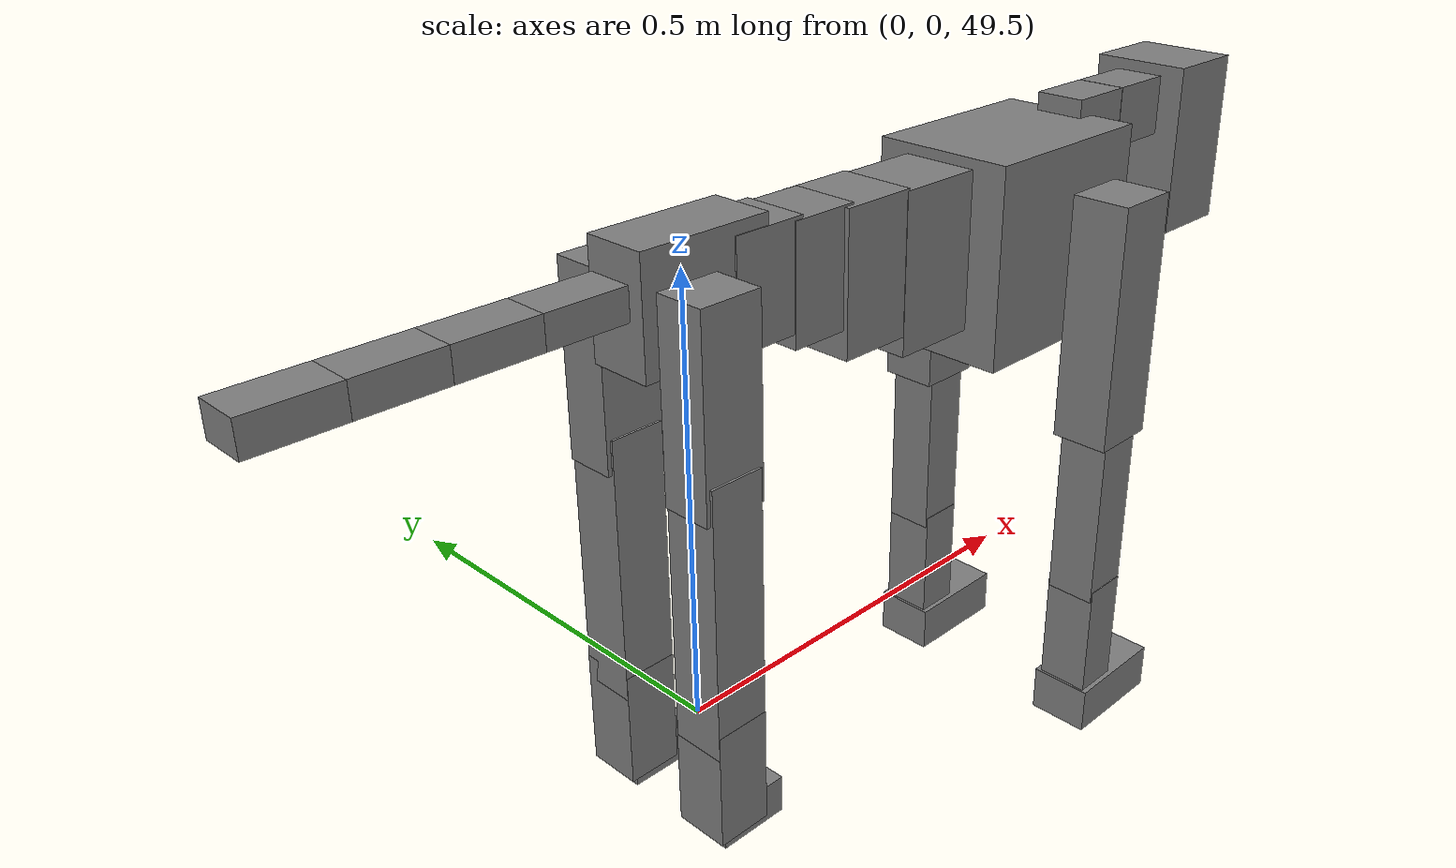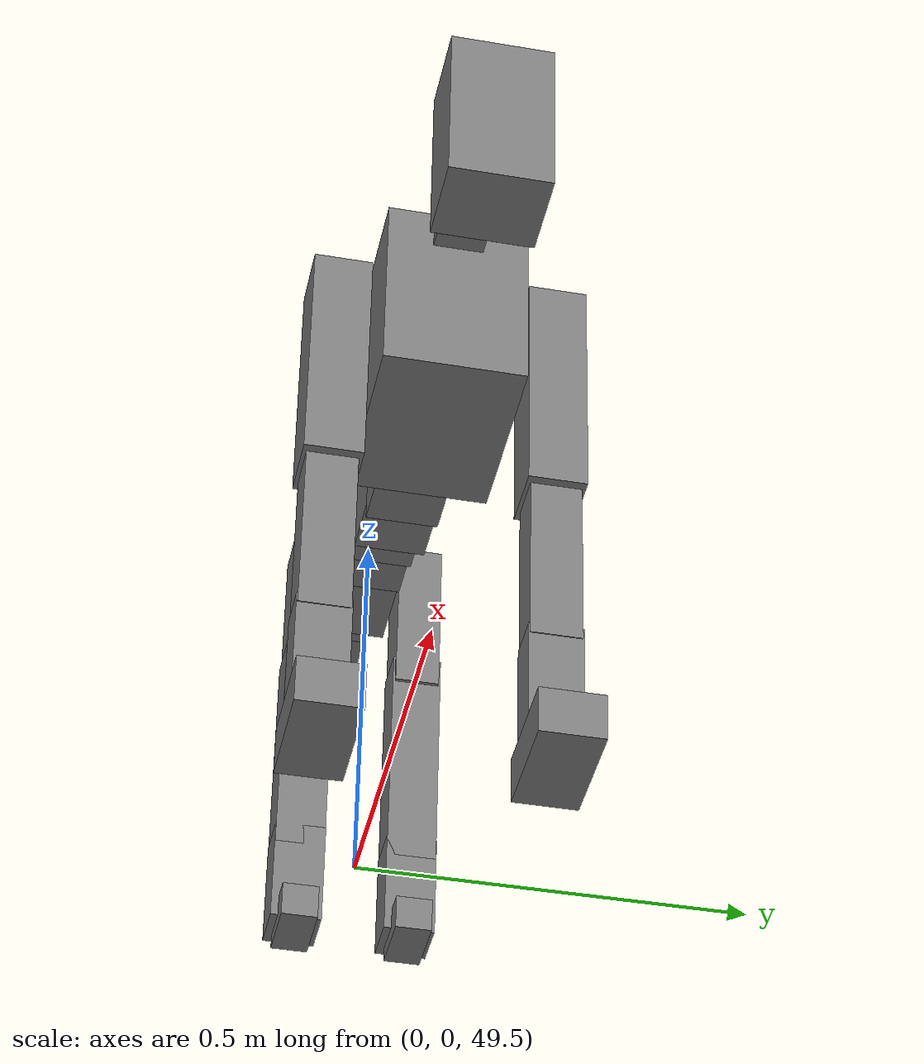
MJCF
<mujoco model="dog">

    <default>
        <joint armature="0.02" stiffness="1" damping="0.2" limited="true"/>
        <geom condim="3" friction="1 0.05 0.05" margin="0.01"/>
        <motor ctrllimited="true" ctrlrange="-1.0 1.0" forcelimited="true" gear="50"/>
    </default>

    <compiler inertiafromgeom="true" angle="radian"/>

    <option timestep="0.016" iterations="50" tolerance="1e-10" solver="Newton" jacobian="dense" cone="pyramidal"/>

    <size nconmax="20000" njmax="60000" nstack="5000000"/>
    <visual>
        <map force="0.1" zfar="30"/>
        <rgba haze="0.15 0.25 0.35 1"/>
        <quality shadowsize="2048"/>
        <global offwidth="800" offheight="800"/>
    </visual>

    <asset>
        <texture type="skybox" builtin="gradient" rgb1="0.3 0.5 0.7" rgb2="0 0 0" width="512" height="512"/>
        <texture name="texplane" type="2d" builtin="checker" rgb1=".2 .3 .4" rgb2=".1 0.15 0.2" width="512" height="512"
                 mark="cross" markrgb=".8 .8 .8"/>
        <texture name="texgeom" type="cube" builtin="flat" mark="cross" width="127" height="1278" rgb1="0.8 0.6 0.4"
                 rgb2="0.8 0.6 0.4" markrgb="1 1 1" random="0.01"/>

        <material name="matplane" reflectance="0.3" texture="texplane" texrepeat="1 1" texuniform="true"/>
        <material name="matgeom" texture="texgeom" texuniform="true" rgba="0.8 0.6 .4 1"/>
    </asset>

    <worldbody>
        <geom name="floor" pos="0 0 0" size="0 0 .25" type="plane" material="matplane" condim="3"/>

        <light directional="false" diffuse=".2 .2 .2" specular="0 0 0" pos="0 0 5" dir="0 0 -1" castshadow="false"/>
        <light mode="targetbodycom" target="torso" directional="false" diffuse=".8 .8 .8" specular="0.3 0.3 0.3"
               pos="0 0 4.0" dir="0 0 -1"/>

        <body name="root" pos="0 0 50">
            <freejoint name="root_1"/>
            <geom type="box" pos="0 0 -0.02" size="0.0774  0.0358  0.063" density="2030"/>

            <body name="spine1" pos="0.054 0 0">
                <joint name="spine1_y" axis="0 1 0" range="0 0.7" limited="true"/>
                <geom type="box" pos="0.02375 0 -0.03" size="0.04375  0.0375  0.05985" density="2030"/>

                <body name="spine2" pos="0.0612 0 0">
                    <joint name="spine2_y" axis="0 1 0" range="-0.15 0.15" limited="true"/>
                    <geom type="box" pos="0.03555  0  -0.04" size="0.04055  0.039  0.06615" density="2030"/>

                    <body name="spine3" pos="0.0730 0 0">
                        <joint name="spine3_y" axis="0 1 0" range="-0.15 0.15" limited="true"/>
                        <geom type="box" pos="0.03555  0  -0.057" size="0.04555  0.0445  0.081" density="2030"/>

                        <body name="spine4" pos="0.0780 0 0">
                            <joint name="spine4_y" axis="0 1 0" range="-0.15 0.15" limited="true"/>
                            <geom type="box" pos="0.05265  0  -0.07" size="0.05265  0.045  0.09135" density="2030"/>

                            <body name="torso" pos="0.1082 0 0">
                                <joint name="torso_y" axis="0 1 0" range="-0.15 0.15" limited="true"/>
                                <geom type="box" pos="0.11925  0  -0.085" size="0.11925  0.085  0.11745"
                                      density="2030"/>

                                <body name="neck1" pos="0.2160  0   0.0180">
                                    <joint name="neck1_y" axis="0 1 0" range="-1.2  -1" limited="true"/>
                                    <geom type="box" pos="0.0423  0  0" size="0.0423  0.03  0.036" density="2325"/>

                                    <body name="neck2" pos="0.0853  0  0">
                                        <joint name="neck2_y" axis="0 1 0" range="0.1  0" limited="true"/>
                                        <geom type="box" pos="0.0423  0  0" size="0.0423  0.03  0.036" density="2325"/>

                                        <body name="head" pos="0.0853  0  0">
                                            <joint name="head_y" axis="0 1 0" range="-0.3  -0.2" limited="true"/>
                                            <geom type="box" pos="0.0531  0  -0.055" size="0.0531  0.06  0.1044"
                                                  density="4030"/>

                                        </body>
                                    </body>
                                </body>

                                <body name="front_shoulder" pos="0.156  0   -0.0480">
                                    <joint name="front_shoulder_y" axis="0 1 0" range="-1 1.5" limited="true"/>
                                    <geom type="box" pos="0 0.13 -0.1205" size="0.0407  0.0348  0.1472" density="1158"/>
                                    <geom type="box" pos="0 -0.13 -0.1205" size="0.0407  0.0348  0.1472"
                                          density="1158"/>

                                    <body name="front_elbow" pos="0  0  -0.2411">
                                        <joint name="front_elbow_y" axis="0 1 0" range="-2 0" limited="true"/>
                                        <geom type="box" pos="0 0.13 -0.1199" size="0.0295  0.0302  0.1199"
                                              density="1081"/>
                                        <geom type="box" pos="0 -0.13 -0.1199" size="0.0295  0.0302  0.1199"
                                              density="1081"/>

                                        <body name="front_wrist" pos="0  0  -0.2398">
                                            <joint name="front_wrist_y" axis="0 1 0" range="-0.2 0" limited="true"/>
                                            <geom type="box" pos="0 0.13 -0.0728" size="0.0283  0.0315  0.0860"
                                                  density="1664"/>
                                            <geom type="box" pos="0 -0.13 -0.0728" size="0.0283  0.0315  0.0860"
                                                  density="1664"/>

                                            <body name="front_finger_end" pos="0  0  -0.1456">
                                                <joint name="front_finger_y" axis="0 1 0" range="-0.4 1"
                                                       limited="true"/>
                                                <geom type="box" pos="0.0376  0.13  -0.0135"
                                                      size="0.0689  0.0376  0.0285" density="1515"/>
                                                <geom type="box" pos="0.0376  -0.13  -0.0135"
                                                      size="0.0689  0.0376  0.0285" density="1515"/>

                                            </body>

                                        </body>
                                    </body>
                                </body>

                            </body>
                        </body>
                    </body>
                </body>
            </body>

            <body name="back_hip" pos="-0.03 0 -0.018">
                <joint name="back_hip_y" axis="0 1 0" range="-1.5 0.3" limited="true"/>
                <geom type="box" pos="0 0.07 -0.0840" size="0.0360  0.0282  0.1068" density="1154"/>
                <geom type="box" pos="0 -0.07 -0.0840" size="0.0360  0.0282  0.1068" density="1154"/>

                <body name="back_knee" pos="0  0  -0.1679">
                    <joint name="back_knee_y" axis="0 1 0" range="0 2.8" limited="true"/>
                    <geom type="box" pos="0 0.07 -0.1362" size="0.0314  0.0309  0.1517" density="1227"/>
                    <geom type="box" pos="0 -0.07 -0.1362" size="0.0314  0.0309  0.1517" density="1227"/>

                    <body name="back_ankle" pos="0  0  -0.2723">
                        <joint name="back_ankle_y" axis="0 1 0" range="-2.2 0" limited="true"/>
                        <geom type="box" pos="0 0.07 -0.0555" size="0.0314  0.0314  0.0667" density="1284"/>
                        <geom type="box" pos="0 -0.07 -0.0555" size="0.0314  0.0314  0.0667" density="1284"/>

                        <body name="back_toe_end" pos="0  0  -0.1109">
                            <joint name="back_toe_y" axis="0 1 0" range="-0.4 1" limited="true"/>
                            <geom type="box" pos="0.0223  0.07  -0.0068" size="0.0409  0.0223  0.0218" density="1515"/>
                            <geom type="box" pos="0.0223  -0.07  -0.0068" size="0.0409  0.0223  0.0218" density="1515"/>

                        </body>
                    </body>
                </body>
            </body>

            <body name="tail1" pos="-0.074 0 -0.006">
                <joint name="tail1_y" axis="0 1 0" range="-0.2 0.2" limited="true"/>
                <geom type="box" pos="-0.0536  0  0" size="0.045  0.025  0.0175" density="1587"/>

                <body name="tail2" pos="-0.09 0 0">
                    <joint name="tail2_y" axis="0 1 0" range="-0.2 0.2" limited="true"/>
                    <geom type="box" pos="-0.0536  0  0" size="0.045  0.025  0.0175" density="1587"/>

                    <body name="tail3" pos="-0.09 0 0">
                        <joint name="tail3_y" axis="0 1 0" range="-0.2 0.2" limited="true"/>
                        <geom type="box" pos="-0.0536  0  0" size="0.045  0.025  0.0175" density="1587"/>

                        <body name="tail4" pos="-0.09 0 0">
                            <joint name="tail4_y" axis="0 1 0" range="-0.2 0.2" limited="true"/>
                            <geom type="box" pos="-0.0536  0  0" size="0.045  0.025  0.0175" density="1587"/>

                        </body>
                    </body>
                </body>
            </body>
        </body>
    </worldbody>

    <actuator>
        <motor joint="spine1_y" forcerange="-150 150     "/>
        <motor joint="spine2_y" forcerange="-150 150     "/>
        <motor joint="spine3_y" forcerange="-150 150     "/>
        <motor joint="spine4_y" forcerange="-150 150     "/>
        <motor joint="torso_y" forcerange="-150 150     "/>
        <motor joint="neck1_y" forcerange="-100 100       "/>
        <motor joint="neck2_y" forcerange="-100 100       "/>
        <motor joint="head_y" forcerange="-150 150       "/>
        <motor joint="front_shoulder_y" forcerange="-169.71 162.43"/>
        <motor joint="front_elbow_y" forcerange="-144.60 174.77"/>
        <motor joint="front_wrist_y" forcerange="-142.34 109.56"/>
        <motor joint="front_finger_y" forcerange="-64.90 95.41"/>
        <motor joint="back_hip_y" forcerange="-293.39 282.82"/>
        <motor joint="back_knee_y" forcerange="-382.37 267.79"/>
        <motor joint="back_angle_y" forcerange="-232.26 170.50"/>
        <motor joint="back_toe_y" forcerange="-51.93 46.33"/>
        <motor joint="tail1_y" forcerange="-50 50     "/>
        <motor joint="tail2_y" forcerange="-50 50     "/>
        <motor joint="tail3_y" forcerange="-50 50     "/>
        <motor joint="tail4_y" forcerange="-50 50     "/>
    </actuator>
</mujoco>
